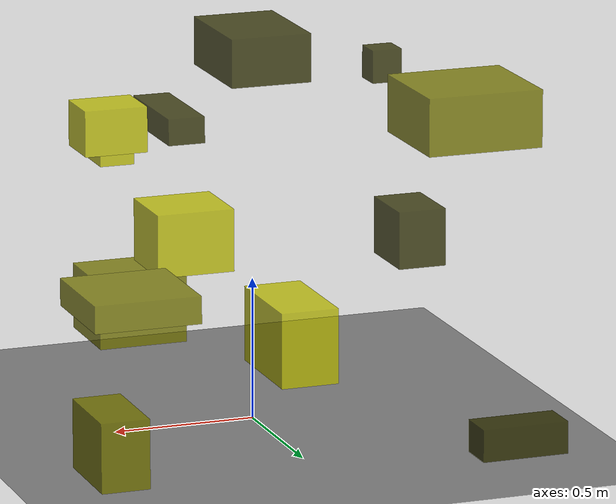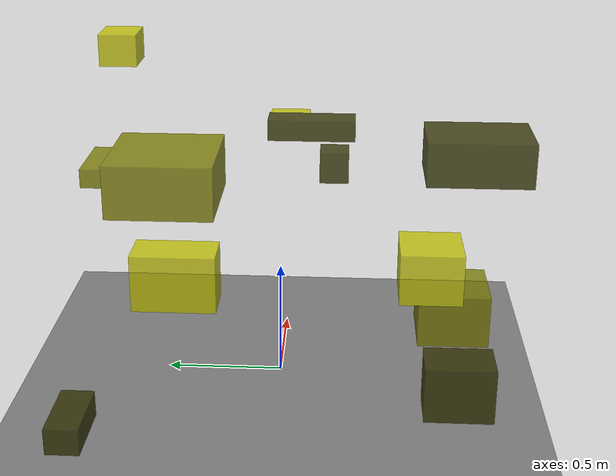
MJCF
<?xml version="1.0"?>
<mujoco model="obstacle_scene">
  <compiler angle="radian" coordinate="local"/>
  <option timestep="0.001" gravity="0 0 -9.81"/>

  <asset>
    <material name="obstacle_mat" rgba="0.8 0.8 0.0 0.8"/>
    <material name="ground_mat" rgba="0.5 0.5 0.5 1"/>
  </asset>

  <worldbody>
    <!-- Ground plane -->
    <geom name="ground" type="plane" size="3 3 0.1" material="ground_mat"/>

    <!-- Obstacles -->
    <body name="obstacle_0" pos="-0.850536 -0.700293 0.417620">
      <geom name="obs_0" type="box" size="0.088749 0.127598 0.105548" rgba="0.2 0.2 0.0 0.8"/>
    </body>
    <body name="obstacle_1" pos="-0.625324 0.381400 1.124937">
      <geom name="obs_1" type="box" size="0.203126 0.195532 0.099668" rgba="0.5 0.5 0.0 0.8"/>
    </body>
    <body name="obstacle_2" pos="0.507273 -0.014900 1.005048">
      <geom name="obs_2" type="box" size="0.059235 0.088198 0.045733" rgba="0.8 0.8 0.0 0.8"/>
    </body>
    <body name="obstacle_3" pos="-0.279831 -0.786964 1.116246">
      <geom name="obs_3" type="box" size="0.148258 0.205177 0.087816" rgba="0.2 0.2 0.0 0.8"/>
    </body>
    <body name="obstacle_4" pos="0.194488 -0.765380 0.233623">
      <geom name="obs_4" type="box" size="0.160808 0.157342 0.119523" rgba="0.5 0.5 0.0 0.8"/>
    </body>
    <body name="obstacle_5" pos="0.028317 -0.648481 0.496043">
      <geom name="obs_5" type="box" size="0.141542 0.135280 0.113678" rgba="0.8 0.8 0.0 0.8"/>
    </body>
    <body name="obstacle_6" pos="0.257973 -0.121319 1.055613">
      <geom name="obs_6" type="box" size="0.064083 0.190142 0.045769" rgba="0.2 0.2 0.0 0.8"/>
    </body>
    <body name="obstacle_7" pos="0.704925 0.809552 0.699070">
      <geom name="obs_7" type="box" size="0.180025 0.184503 0.046176" rgba="0.5 0.5 0.0 0.8"/>
    </body>
    <body name="obstacle_8" pos="0.028835 0.467341 0.427600">
      <geom name="obs_8" type="box" size="0.099874 0.187057 0.129793" rgba="0.8 0.8 0.0 0.8"/>
    </body>
    <body name="obstacle_9" pos="-0.660680 0.798588 0.093226">
      <geom name="obs_9" type="box" size="0.152067 0.068842 0.056170" rgba="0.2 0.2 0.0 0.8"/>
    </body>
    <body name="obstacle_10" pos="0.706208 0.593989 0.154002">
      <geom name="obs_10" type="box" size="0.083435 0.155745 0.119918" rgba="0.5 0.5 0.0 0.8"/>
    </body>
    <body name="obstacle_11" pos="0.775620 0.809791 1.286727">
      <geom name="obs_11" type="box" size="0.103557 0.088885 0.074770" rgba="0.8 0.8 0.0 0.8"/>
    </body>
    <body name="obstacle_12" pos="-0.561564 -0.232885 1.162396">
      <geom name="obs_12" type="box" size="0.053129 0.052243 0.057938" rgba="0.2 0.2 0.0 0.8"/>
    </body>
  </worldbody>
</mujoco>
